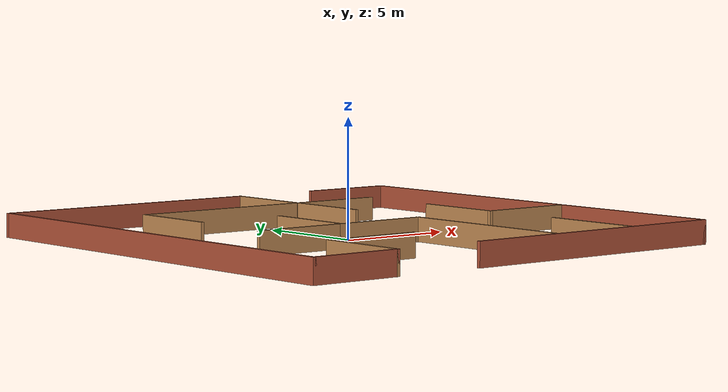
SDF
<?xml version='1.0'?>
<sdf version='1.6'>
  <model name='maze1'>
    <pose frame=''>0.0315 -0.1855 0 0 -0 0</pose>
    <link name='Wall_100'>
      <collision name='Wall_100_Collision'>
        <geometry>
          <box>
            <size>12 0.15 1</size>
          </box>
        </geometry>
        <pose frame=''>0 0 0.5 0 -0 0</pose>
      </collision>
      <visual name='Wall_100_Visual'>
        <pose frame=''>0 0 0.5 0 -0 0</pose>
        <geometry>
          <box>
            <size>12 0.15 1</size>
          </box>
        </geometry>
        <material>
          <script>
            <uri>file://media/materials/scripts/gazebo.material</uri>
            <name>Gazebo/Bricks</name>
          </script>
          <ambient>1 1 1 1</ambient>
        </material>
        <meta>
          <layer>0</layer>
        </meta>
      </visual>
      <pose frame=''>-4.0495 9.9285 0 0 -0 3.14159</pose>
    </link>
    <link name='Wall_101'>
      <collision name='Wall_101_Collision'>
        <geometry>
          <box>
            <size>20 0.15 1</size>
          </box>
        </geometry>
        <pose frame=''>0 0 0.5 0 -0 0</pose>
      </collision>
      <visual name='Wall_101_Visual'>
        <pose frame=''>0 0 0.5 0 -0 0</pose>
        <geometry>
          <box>
            <size>20 0.15 1</size>
          </box>
        </geometry>
        <material>
          <script>
            <uri>file://media/materials/scripts/gazebo.material</uri>
            <name>Gazebo/Bricks</name>
          </script>
          <ambient>1 1 1 1</ambient>
        </material>
        <meta>
          <layer>0</layer>
        </meta>
      </visual>
      <pose frame=''>-9.9745 0.0035 0 0 -0 -1.5708</pose>
    </link>
    <link name='Wall_102'>
      <collision name='Wall_102_Collision'>
        <geometry>
          <box>
            <size>4 0.15 1</size>
          </box>
        </geometry>
        <pose frame=''>0 0 0.5 0 -0 0</pose>
      </collision>
      <visual name='Wall_102_Visual'>
        <pose frame=''>0 0 0.5 0 -0 0</pose>
        <geometry>
          <box>
            <size>4 0.15 1</size>
          </box>
        </geometry>
        <material>
          <script>
            <uri>file://media/materials/scripts/gazebo.material</uri>
            <name>Gazebo/Bricks</name>
          </script>
          <ambient>1 1 1 1</ambient>
        </material>
        <meta>
          <layer>0</layer>
        </meta>
      </visual>
      <pose frame=''>-8.0495 -9.9215 0 0 -0 0</pose>
    </link>
    <link name='Wall_103'>
      <collision name='Wall_103_Collision'>
        <geometry>
          <box>
            <size>4 0.15 1</size>
          </box>
        </geometry>
        <pose frame=''>0 0 0.5 0 -0 0</pose>
      </collision>
      <visual name='Wall_103_Visual'>
        <pose frame=''>0 0 0.5 0 -0 0</pose>
        <geometry>
          <box>
            <size>4 0.15 1</size>
          </box>
        </geometry>
        <material>
          <script>
            <uri>file://media/materials/scripts/gazebo.material</uri>
            <name>Gazebo/Wood</name>
          </script>
          <ambient>1 1 1 1</ambient>
        </material>
        <meta>
          <layer>0</layer>
        </meta>
      </visual>
      <pose frame=''>-6.1245 -7.9965 0 0 -0 1.5708</pose>
    </link>
    <link name='Wall_104'>
      <collision name='Wall_104_Collision'>
        <geometry>
          <box>
            <size>4.25 0.15 1</size>
          </box>
        </geometry>
        <pose frame=''>0 0 0.5 0 -0 0</pose>
      </collision>
      <visual name='Wall_104_Visual'>
        <pose frame=''>0 0 0.5 0 -0 0</pose>
        <geometry>
          <box>
            <size>4.25 0.15 1</size>
          </box>
        </geometry>
        <material>
          <script>
            <uri>file://media/materials/scripts/gazebo.material</uri>
            <name>Gazebo/Wood</name>
          </script>
          <ambient>1 1 1 1</ambient>
        </material>
        <meta>
          <layer>0</layer>
        </meta>
      </visual>
      <pose frame=''>-4.0745 -6.0715 0 0 -0 0</pose>
    </link>
    <link name='Wall_108'>
      <collision name='Wall_108_Collision'>
        <geometry>
          <box>
            <size>4 0.15 1</size>
          </box>
        </geometry>
        <pose frame=''>0 0 0.5 0 -0 0</pose>
      </collision>
      <visual name='Wall_108_Visual'>
        <pose frame=''>0 0 0.5 0 -0 0</pose>
        <geometry>
          <box>
            <size>4 0.15 1</size>
          </box>
        </geometry>
        <material>
          <script>
            <uri>file://media/materials/scripts/gazebo.material</uri>
            <name>Gazebo/Wood</name>
          </script>
          <ambient>1 1 1 1</ambient>
        </material>
        <meta>
          <layer>0</layer>
        </meta>
      </visual>
      <pose frame=''>-2.1065 0.1015 0 0 -0 -1.5708</pose>
    </link>
    <link name='Wall_110'>
      <collision name='Wall_110_Collision'>
        <geometry>
          <box>
            <size>8 0.15 1</size>
          </box>
        </geometry>
        <pose frame=''>0 0 0.5 0 -0 0</pose>
      </collision>
      <visual name='Wall_110_Visual'>
        <pose frame=''>0 0 0.5 0 -0 0</pose>
        <geometry>
          <box>
            <size>8 0.15 1</size>
          </box>
        </geometry>
        <material>
          <script>
            <uri>file://media/materials/scripts/gazebo.material</uri>
            <name>Gazebo/Wood</name>
          </script>
          <ambient>1 1 1 1</ambient>
        </material>
        <meta>
          <layer>0</layer>
        </meta>
      </visual>
      <pose frame=''>1.9005 -5.9055 0 0 -0 -1.5708</pose>
    </link>
    <link name='Wall_116'>
      <collision name='Wall_116_Collision'>
        <geometry>
          <box>
            <size>4 0.15 1</size>
          </box>
        </geometry>
        <pose frame=''>0 0 0.5 0 -0 0</pose>
      </collision>
      <visual name='Wall_116_Visual'>
        <pose frame=''>0 0 0.5 0 -0 0</pose>
        <geometry>
          <box>
            <size>4 0.15 1</size>
          </box>
        </geometry>
        <material>
          <script>
            <uri>file://media/materials/scripts/gazebo.material</uri>
            <name>Gazebo/Wood</name>
          </script>
          <ambient>1 1 1 1</ambient>
        </material>
        <meta>
          <layer>0</layer>
        </meta>
      </visual>
      <pose frame=''>1.9005 3.9515 0 0 -0 1.5708</pose>
    </link>
    <link name='Wall_121'>
      <collision name='Wall_121_Collision'>
        <geometry>
          <box>
            <size>4 0.15 1</size>
          </box>
        </geometry>
        <pose frame=''>0 0 0.5 0 -0 0</pose>
      </collision>
      <visual name='Wall_121_Visual'>
        <pose frame=''>0 0 0.5 0 -0 0</pose>
        <geometry>
          <box>
            <size>4 0.15 1</size>
          </box>
        </geometry>
        <material>
          <script>
            <uri>file://media/materials/scripts/gazebo.material</uri>
            <name>Gazebo/Wood</name>
          </script>
          <ambient>1 1 1 1</ambient>
        </material>
        <meta>
          <layer>0</layer>
        </meta>
      </visual>
      <pose frame=''>-6.0185 3.9625 0 0 -0 1.5708</pose>
    </link>
    <link name='Wall_122'>
      <collision name='Wall_122_Collision'>
        <geometry>
          <box>
            <size>8.04652 0.15 1</size>
          </box>
        </geometry>
        <pose frame=''>0 0 0.5 0 -0 0</pose>
      </collision>
      <visual name='Wall_122_Visual'>
        <pose frame=''>0 0 0.5 0 -0 0</pose>
        <geometry>
          <box>
            <size>8.04652 0.15 1</size>
          </box>
        </geometry>
        <material>
          <script>
            <uri>file://media/materials/scripts/gazebo.material</uri>
            <name>Gazebo/Wood</name>
          </script>
          <ambient>1 1 1 1</ambient>
        </material>
        <meta>
          <layer>0</layer>
        </meta>
      </visual>
      <pose frame=''>-2.07 5.8875 0 0 -0 0</pose>
    </link>
    <link name='Wall_123'>
      <collision name='Wall_123_Collision'>
        <geometry>
          <box>
            <size>4.20348 0.15 1</size>
          </box>
        </geometry>
        <pose frame=''>0 0 0.5 0 -0 0</pose>
      </collision>
      <visual name='Wall_123_Visual'>
        <pose frame=''>0 0 0.5 0 -0 0</pose>
        <geometry>
          <box>
            <size>4.20348 0.15 1</size>
          </box>
        </geometry>
        <material>
          <script>
            <uri>file://media/materials/scripts/gazebo.material</uri>
            <name>Gazebo/Wood</name>
          </script>
          <ambient>1 1 1 1</ambient>
        </material>
        <meta>
          <layer>0</layer>
        </meta>
      </visual>
      <pose frame=''>3.905 5.8875 0 0 -0 0</pose>
    </link>
    <link name='Wall_129'>
      <collision name='Wall_129_Collision'>
        <geometry>
          <box>
            <size>4 0.15 1</size>
          </box>
        </geometry>
        <pose frame=''>0 0 0.5 0 -0 0</pose>
      </collision>
      <visual name='Wall_129_Visual'>
        <pose frame=''>0 0 0.5 0 -0 0</pose>
        <geometry>
          <box>
            <size>4 0.15 1</size>
          </box>
        </geometry>
        <material>
          <script>
            <uri>file://media/materials/scripts/gazebo.material</uri>
            <name>Gazebo/Wood</name>
          </script>
          <ambient>1 1 1 1</ambient>
        </material>
        <meta>
          <layer>0</layer>
        </meta>
      </visual>
      <pose frame=''>-4.2335 -1.9165 0 0 -0 0</pose>
    </link>
    <link name='Wall_130'>
      <collision name='Wall_130_Collision'>
        <geometry>
          <box>
            <size>4.25 0.15 1</size>
          </box>
        </geometry>
        <pose frame=''>0 0 0.5 0 -0 0</pose>
      </collision>
      <visual name='Wall_130_Visual'>
        <pose frame=''>0 0 0.5 0 -0 0</pose>
        <geometry>
          <box>
            <size>4.25 0.15 1</size>
          </box>
        </geometry>
        <material>
          <script>
            <uri>file://media/materials/scripts/gazebo.material</uri>
            <name>Gazebo/Wood</name>
          </script>
          <ambient>1 1 1 1</ambient>
        </material>
        <meta>
          <layer>0</layer>
        </meta>
      </visual>
      <pose frame=''>-0.2585 -1.9165 0 0 -0 0</pose>
    </link>
    <link name='Wall_132'>
      <collision name='Wall_132_Collision'>
        <geometry>
          <box>
            <size>4.5 0.15 1</size>
          </box>
        </geometry>
        <pose frame=''>0 0 0.5 0 -0 0</pose>
      </collision>
      <visual name='Wall_132_Visual'>
        <pose frame=''>0 0 0.5 0 -0 0</pose>
        <geometry>
          <box>
            <size>4.5 0.15 1</size>
          </box>
        </geometry>
        <material>
          <script>
            <uri>file://media/materials/scripts/gazebo.material</uri>
            <name>Gazebo/Wood</name>
          </script>
          <ambient>1 1 1 1</ambient>
        </material>
        <meta>
          <layer>0</layer>
        </meta>
      </visual>
      <pose frame=''>5.9385 -7.7445 0 0 -0 1.5708</pose>
    </link>
    <link name='Wall_134'>
      <collision name='Wall_134_Collision'>
        <geometry>
          <box>
            <size>4.25 0.15 1</size>
          </box>
        </geometry>
        <pose frame=''>0 0 0.5 0 -0 0</pose>
      </collision>
      <visual name='Wall_134_Visual'>
        <pose frame=''>0 0 0.5 0 -0 0</pose>
        <geometry>
          <box>
            <size>4.25 0.15 1</size>
          </box>
        </geometry>
        <material>
          <script>
            <uri>file://media/materials/scripts/gazebo.material</uri>
            <name>Gazebo/Wood</name>
          </script>
          <ambient>1 1 1 1</ambient>
        </material>
        <meta>
          <layer>0</layer>
        </meta>
      </visual>
      <pose frame=''>7.8895 -1.9165 0 0 -0 3.14159</pose>
    </link>
    <link name='Wall_138'>
      <collision name='Wall_138_Collision'>
        <geometry>
          <box>
            <size>4.2 0.15 1</size>
          </box>
        </geometry>
        <pose frame=''>0 0 0.5 0 -0 0</pose>
      </collision>
      <visual name='Wall_138_Visual'>
        <pose frame=''>0 0 0.5 0 -0 0</pose>
        <geometry>
          <box>
            <size>4.2 0.15 1</size>
          </box>
        </geometry>
        <material>
          <script>
            <uri>file://media/materials/scripts/gazebo.material</uri>
            <name>Gazebo/Wood</name>
          </script>
          <ambient>1 1 1 1</ambient>
        </material>
        <meta>
          <layer>0</layer>
        </meta>
      </visual>
      <pose frame=''>1.8785 7.9125 0 0 -0 1.5708</pose>
    </link>
    <link name='Wall_142'>
      <collision name='Wall_142_Collision'>
        <geometry>
          <box>
            <size>4 0.15 1</size>
          </box>
        </geometry>
        <pose frame=''>0 0 0.5 0 -0 0</pose>
      </collision>
      <visual name='Wall_142_Visual'>
        <pose frame=''>0 0 0.5 0 -0 0</pose>
        <geometry>
          <box>
            <size>4 0.15 1</size>
          </box>
        </geometry>
        <material>
          <script>
            <uri>file://media/materials/scripts/gazebo.material</uri>
            <name>Gazebo/Wood</name>
          </script>
          <ambient>1 1 1 1</ambient>
        </material>
        <meta>
          <layer>0</layer>
        </meta>
      </visual>
      <pose frame=''>5.8395 0.0085 0 0 -0 1.5708</pose>
    </link>
    <link name='Wall_96'>
      <collision name='Wall_96_Collision'>
        <geometry>
          <box>
            <size>12.25 0.15 1</size>
          </box>
        </geometry>
        <pose frame=''>0 0 0.5 0 -0 0</pose>
      </collision>
      <visual name='Wall_96_Visual'>
        <pose frame=''>0 0 0.5 0 -0 0</pose>
        <geometry>
          <box>
            <size>12.25 0.15 1</size>
          </box>
        </geometry>
        <material>
          <script>
            <uri>file://media/materials/scripts/gazebo.material</uri>
            <name>Gazebo/Bricks</name>
          </script>
          <ambient>1 1 1 1</ambient>
        </material>
        <meta>
          <layer>0</layer>
        </meta>
      </visual>
      <pose frame=''>3.9245 -9.9375 0 0 -0 0</pose>
    </link>
    <link name='Wall_97'>
      <collision name='Wall_97_Collision'>
        <geometry>
          <box>
            <size>20 0.15 1</size>
          </box>
        </geometry>
        <pose frame=''>0 0 0.5 0 -0 0</pose>
      </collision>
      <visual name='Wall_97_Visual'>
        <pose frame=''>0 0 0.5 0 -0 0</pose>
        <geometry>
          <box>
            <size>20 0.15 1</size>
          </box>
        </geometry>
        <material>
          <script>
            <uri>file://media/materials/scripts/gazebo.material</uri>
            <name>Gazebo/Bricks</name>
          </script>
          <ambient>1 1 1 1</ambient>
        </material>
        <meta>
          <layer>0</layer>
        </meta>
      </visual>
      <pose frame=''>9.9745 -0.0125 0 0 -0 1.5708</pose>
    </link>
    <link name='Wall_98'>
      <collision name='Wall_98_Collision'>
        <geometry>
          <box>
            <size>4.25 0.15 1</size>
          </box>
        </geometry>
        <pose frame=''>0 0 0.5 0 -0 0</pose>
      </collision>
      <visual name='Wall_98_Visual'>
        <pose frame=''>0 0 0.5 0 -0 0</pose>
        <geometry>
          <box>
            <size>4.25 0.15 1</size>
          </box>
        </geometry>
        <material>
          <script>
            <uri>file://media/materials/scripts/gazebo.material</uri>
            <name>Gazebo/Bricks</name>
          </script>
          <ambient>1 1 1 1</ambient>
        </material>
        <meta>
          <layer>0</layer>
        </meta>
      </visual>
      <pose frame=''>7.9245 9.9125 0 0 -0 3.14159</pose>
    </link>
    <static>1</static>
  </model>
</sdf>
